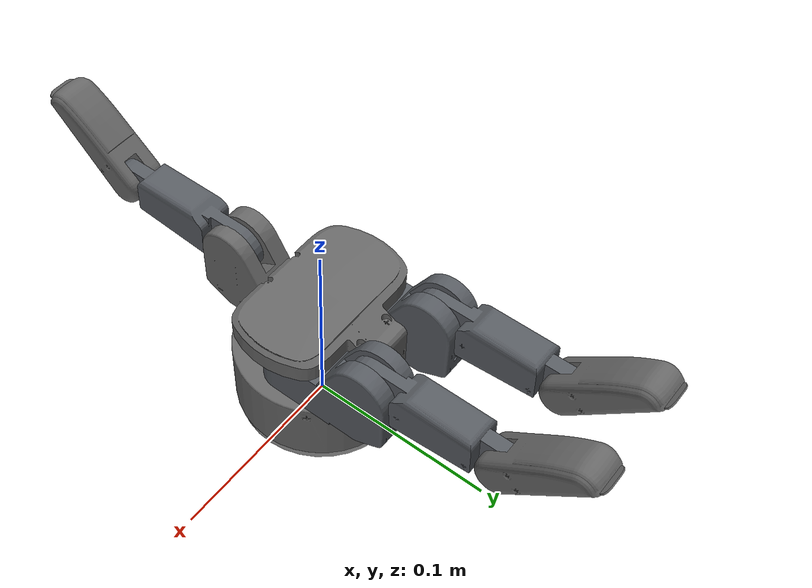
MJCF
<mujoco model="bhand_model">
  <compiler angle="radian" autolimits="true" />
  <option gravity="0 0 0" timestep="0.001" />
  <visual>
    <global offwidth="3840" offheight="2160" />
  </visual>
  <asset>
    <mesh name="base_link" content_type="model/obj" file="meshes/visual/base_link.obj" />
    <mesh name="base_link_cylinder_collision000" content_type="model/obj" file="meshes/collision/base_link_cylinder_collision000.obj" />
    <mesh name="prox_link" content_type="model/obj" file="meshes/visual/prox_link.obj" />
    <mesh name="prox_link_cylinder_collision000" content_type="model/obj" file="meshes/collision/prox_link_cylinder_collision000.obj" />
    <mesh name="med_link" content_type="model/obj" file="meshes/visual/med_link.obj" />
    <mesh name="dist_link" content_type="model/obj" file="meshes/visual/dist_link.obj" />
    <material name="base_link_material" rgba="0.40000000 0.40000000 0.40000000 1" />
    <material name="prox_link_material" rgba="0.34117647 0.35686275 0.38039216 1" />
    <material name="med_link_material" rgba="0.34117647 0.35686275 0.38039216 1" />
    <material name="dist_link_material" rgba="0.40000000 0.40000000 0.40000000 1" />
    <texture type="skybox" builtin="gradient" rgb1="1 1 1" rgb2="1 1 1" width="32" height="512" />
  </asset>
  <worldbody>
    <light pos="0 0 5" dir="0 0 -1" directional="true" />
    <body name="hand_root">
      <body name="base_link">
        <inertial pos="-1.53445e-05 -0.00277694 0.0352882" quat="0.438804 0.898562 0.00566895 -0.00225058" mass="0.377966" diaginertia="0.00042733 0.000400804 0.000337306" />
        <geom name="base_link_base_link_visual" type="mesh" contype="0" conaffinity="0" group="1" density="0" mesh="base_link" material="base_link_material" />
        <geom type="mesh" mesh="base_link_cylinder_collision000" group="3" />
        <geom size="0.013 0.054 0.013" pos="0 -0.011 0.054" type="box" group="3" />
        <geom size="0.038 0.023 0.007" pos="0 0 0.072" type="box" group="3" />
        <geom size="0.013 0.01 0.005" pos="0 0.032 0.068" quat="0.981048 -0.193767 0 0" type="box" group="3" />
        <geom size="0.013 0.01 0.005" pos="0 -0.035 0.07" quat="0.870293 -0.492535 0 0" type="box" group="3" />
        <body name="finger_1_prox_link" pos="0.025 0 0.0415" quat="0.707105 0 0 -0.707108">
          <inertial pos="-0.288649 0.00099838 0.171253" quat="0.54962 0.438092 0.426 0.569664" mass="0.561431" diaginertia="0.000339591 0.000307549 9.05655e-05" />
          <joint name="finger_1_prox_joint" pos="0 0 0" axis="0 0 1" range="-3.14 0" damping="0.1" armature="0.0002" frictionloss="0.0" />
          <geom name="finger_1_prox_link_prox_link_visual" type="mesh" contype="0" conaffinity="0" group="1" density="0" mesh="prox_link" material="prox_link_material" />
          <geom type="mesh" mesh="prox_link_cylinder_collision000" group="3" />
          <geom size="0.035 0.012 0.013" pos="-0.029 0 0.012" type="box" group="3" />
          <geom size="0.01 0.013 0.005" pos="-0.036 0 0.03" quat="0.870539 0 0.4921 0" type="box" group="3" />
          <body name="finger_1_med_liink" pos="-0.05 0 0.0339" quat="0.707105 0.707108 0 0">
            <inertial pos="-0.0309182 0.0019693 0.00074337" quat="-0.0214282 0.707188 0.0177553 0.706477" mass="0.313211" diaginertia="0.000177657 0.000174065 2.13826e-05" />
            <joint name="finger_1_med_joint" pos="0 0 0" axis="0 0 1" range="-2.44 0" damping="0.1" armature="0.0002" frictionloss="0.0" />
            <geom name="finger_1_med_liink_med_link_visual" type="mesh" contype="0" conaffinity="0" group="1" density="0" mesh="med_link" material="med_link_material" />
            <geom size="0.018 0.012 0.009" pos="-0.04 0.003 0.001" type="box" group="3" />
            <geom size="0.016 0.011 0.005" pos="-0.006 0.001 0.001" type="box" group="3" />
            <geom size="0.01 0.011 0.005" pos="-0.068 0.003 0.001" type="box" group="3" />
            <geom size="0.004 0.011 0.009" pos="-0.019 0.001 0.001" type="box" group="3" />
            <body name="finger_1_dist_link" pos="-0.069936 0.003 0" quat="1 0 0 0">
              <inertial pos="-0.0183315 0.0175634 0.000497128" quat="0.251159 0.315294 0.632663 0.661246" mass="0.193423" diaginertia="6.47196e-05 5.98921e-05 1.29472e-05" />
              <joint name="finger_1_dist_joint" pos="0 0 0" axis="0 0 1" range="-0.785 0" damping="0.1" armature="0.0002" frictionloss="0.0" />
              <geom name="finger_1_dist_link_dist_link_visual" type="mesh" contype="0" conaffinity="0" group="1" density="0" mesh="dist_link" material="dist_link_material" />
              <geom size="0.007 0.019 0.01" pos="-0.022 0.023 0" quat="0.900708 0 0 0.434425" type="box" group="3" />
              <geom size="0.009 0.011 0.01" pos="-0.002 0.002 0" quat="0.925554 0 0 0.378616" type="box" group="3" />
              <geom size="0.006 0.006 0.01" pos="-0.038 0.034 0" quat="0.691668 0 0 0.722215" type="box" group="3" />
            </body>
          </body>
        </body>
        <body name="finger_2_prox_link" pos="-0.025 0 0.0415" quat="0.707105 0 0 -0.707108">
          <inertial pos="-0.288649 0.00099838 0.171253" quat="0.54962 0.438092 0.426 0.569664" mass="0.561431" diaginertia="0.000339591 0.000307549 9.05655e-05" />
          <joint name="finger_2_prox_joint" pos="0 0 0" axis="0 0 1" range="0 3.14" damping="0.1" armature="0.0002" frictionloss="0.0" />
          <geom name="finger_2_prox_link_prox_link_visual" type="mesh" contype="0" conaffinity="0" group="1" density="0" mesh="prox_link" material="prox_link_material" />
          <geom type="mesh" mesh="prox_link_cylinder_collision000" group="3" />
          <geom size="0.035 0.012 0.013" pos="-0.029 0 0.012" type="box" group="3" />
          <geom size="0.01 0.013 0.005" pos="-0.036 0 0.03" quat="0.870539 0 0.4921 0" type="box" group="3" />
          <body name="finger_2_med_link" pos="-0.05 0 0.0339" quat="0.707105 0.707108 0 0">
            <inertial pos="-0.0309061 0.00214998 0.00074337" quat="-0.0236473 0.707137 0.0196672 0.706407" mass="0.313211" diaginertia="0.000177657 0.000174065 2.13826e-05" />
            <joint name="finger_2_med_joint" pos="0 0 0" axis="0 0 1" range="-2.44 0" damping="0.1" armature="0.0002" frictionloss="0.0" />
            <geom name="finger_2_med_link_med_link_visual" type="mesh" contype="0" conaffinity="0" group="1" density="0" mesh="med_link" material="med_link_material" />
            <geom size="0.018 0.012 0.009" pos="-0.04 0.003 0.001" type="box" group="3" />
            <geom size="0.016 0.011 0.005" pos="-0.006 0.001 0.001" type="box" group="3" />
            <geom size="0.01 0.011 0.005" pos="-0.068 0.003 0.001" type="box" group="3" />
            <geom size="0.004 0.011 0.009" pos="-0.019 0.001 0.001" type="box" group="3" />
            <body name="finger_2_dist_link" pos="-0.069917 0.0034087 0">
              <inertial pos="-0.0181941 0.0177057 0.000497128" quat="0.248532 0.312878 0.633924 0.662178" mass="0.193423" diaginertia="6.47197e-05 5.9892e-05 1.29472e-05" />
              <joint name="finger_2_dist_joint" pos="0 0 0" axis="0 0 1" range="-0.785 0" damping="0.1" armature="0.0002" frictionloss="0.0" />
              <geom name="finger_2_dist_link_dist_link_visual" type="mesh" contype="0" conaffinity="0" group="1" density="0" mesh="dist_link" material="dist_link_material" />
              <geom size="0.007 0.019 0.01" pos="-0.022 0.023 0" quat="0.900708 0 0 0.434425" type="box" group="3" />
              <geom size="0.009 0.011 0.01" pos="-0.002 0.002 0" quat="0.925554 0 0 0.378616" type="box" group="3" />
              <geom size="0.006 0.006 0.01" pos="-0.038 0.034 0" quat="0.691668 0 0 0.722215" type="box" group="3" />
            </body>
          </body>
        </body>
        <body name="finger_3_med_link" pos="0 -0.05 0.0754" quat="0.499998 0.5 0.500002 0.5">
          <inertial pos="-0.0309182 0.0019693 0.00074337" quat="-0.0214282 0.707188 0.0177553 0.706477" mass="0.313211" diaginertia="0.000177657 0.000174065 2.13826e-05" />
          <joint name="finger_3_med_joint" pos="0 0 0" axis="0 0 1" range="-2.44 0" damping="0.1" armature="0.0002" frictionloss="0.0" />
          <geom name="finger_3_med_link_med_link_visual" type="mesh" contype="0" conaffinity="0" group="1" density="0" mesh="med_link" material="med_link_material" />
          <geom size="0.018 0.012 0.009" pos="-0.04 0.003 0.001" type="box" group="3" />
          <geom size="0.016 0.011 0.005" pos="-0.006 0.001 0.001" type="box" group="3" />
          <geom size="0.01 0.011 0.005" pos="-0.068 0.003 0.001" type="box" group="3" />
          <geom size="0.004 0.011 0.009" pos="-0.019 0.001 0.001" type="box" group="3" />
          <body name="finger_3_dist_link" pos="-0.069936 0.003 0">
            <inertial pos="-0.0183315 0.0175634 0.000497128" quat="0.251159 0.315294 0.632663 0.661246" mass="0.193423" diaginertia="6.47196e-05 5.98921e-05 1.29472e-05" />
            <joint name="finger_3_dist_joint" pos="0 0 0" axis="0 0 1" range="-0.785 0" damping="0.1" armature="0.0002" frictionloss="0.0" />
            <geom name="finger_3_dist_link_dist_link_visual" type="mesh" contype="0" conaffinity="0" group="1" density="0" mesh="dist_link" material="dist_link_material" />
            <geom size="0.007 0.019 0.01" pos="-0.022 0.023 0" quat="0.900708 0 0 0.434425" type="box" group="3" />
            <geom size="0.009 0.011 0.01" pos="-0.002 0.002 0" quat="0.925554 0 0 0.378616" type="box" group="3" />
            <geom size="0.006 0.006 0.01" pos="-0.038 0.034 0" quat="0.691668 0 0 0.722215" type="box" group="3" />
          </body>
        </body>
      </body>
    </body>
  </worldbody>
  <contact>
    <exclude name="ex_base_link_finger_1_prox_link" body1="base_link" body2="finger_1_prox_link" />
    <exclude name="ex_finger_1_prox_link_finger_1_med_liink" body1="finger_1_prox_link" body2="finger_1_med_liink" />
    <exclude name="ex_finger_1_med_liink_finger_1_dist_link" body1="finger_1_med_liink" body2="finger_1_dist_link" />
    <exclude name="ex_base_link_finger_2_prox_link" body1="base_link" body2="finger_2_prox_link" />
    <exclude name="ex_finger_2_prox_link_finger_2_med_link" body1="finger_2_prox_link" body2="finger_2_med_link" />
    <exclude name="ex_finger_2_med_link_finger_2_dist_link" body1="finger_2_med_link" body2="finger_2_dist_link" />
    <exclude name="ex_base_link_finger_3_med_link" body1="base_link" body2="finger_3_med_link" />
    <exclude name="ex_finger_3_med_link_finger_3_dist_link" body1="finger_3_med_link" body2="finger_3_dist_link" />
  </contact>
  <equality />
  <actuator>
    <position name="finger_1_prox_joint_actuator" joint="finger_1_prox_joint" kp="1" forcerange="-1 1" ctrlrange="-3.14 0" />
    <position name="finger_1_med_joint_actuator" joint="finger_1_med_joint" kp="1" forcerange="-1 1" ctrlrange="-2.44 0" />
    <position name="finger_1_dist_joint_actuator" joint="finger_1_dist_joint" kp="1" forcerange="-1 1" ctrlrange="-0.785 0" />
    <position name="finger_2_prox_joint_actuator" joint="finger_2_prox_joint" kp="1" forcerange="-1 1" ctrlrange="0 3.14" />
    <position name="finger_2_med_joint_actuator" joint="finger_2_med_joint" kp="1" forcerange="-1 1" ctrlrange="-2.44 0" />
    <position name="finger_2_dist_joint_actuator" joint="finger_2_dist_joint" kp="1" forcerange="-1 1" ctrlrange="-0.785 0" />
    <position name="finger_3_med_joint_actuator" joint="finger_3_med_joint" kp="1" forcerange="-1 1" ctrlrange="-2.44 0" />
    <position name="finger_3_dist_joint_actuator" joint="finger_3_dist_joint" kp="1" forcerange="-1 1" ctrlrange="-0.785 0" />
  </actuator>
</mujoco>
